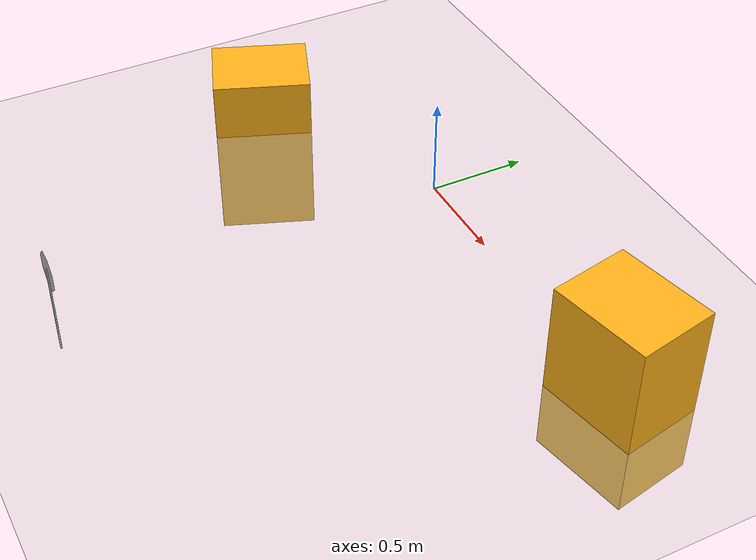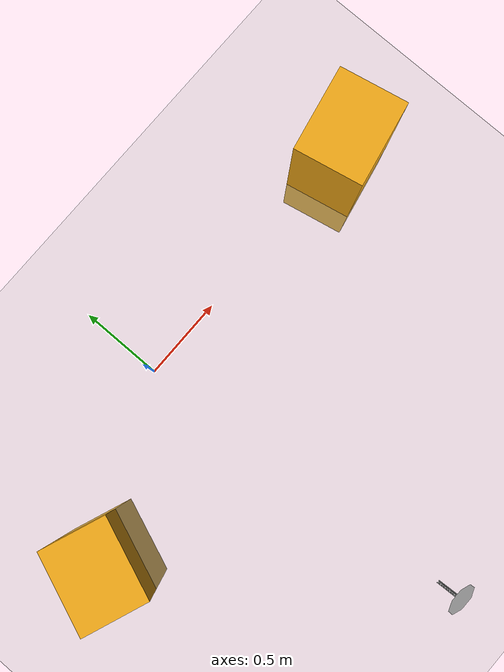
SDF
<sdf version="1.9">
  <world name="default">
    <light name='sun' type='directional'>
      <cast_shadows>1</cast_shadows>
      <pose>0 0 6 0 0 0</pose>
      <diffuse>0.8 0.8 0.8 1</diffuse>
      <specular>0.2 0.2 0.2 1</specular>
      <intensity>2</intensity>
      <attenuation>
        <range>1000</range>
        <constant>0.9</constant>
        <linear>0.01</linear>
        <quadratic>0.001</quadratic>
      </attenuation>
      <direction>-0.2 -0.8 -1</direction>
    </light>

    <include>
      <uri>https://fuel.gazebosim.org/1.0/OpenRobotics/models/Ground Plane</uri>
    </include>

    <physics name='default_physics' type='ignored'>
      <max_step_size>0.001</max_step_size>
      <real_time_factor>1</real_time_factor>
    </physics>

    <model name='Stop Sign'>
      <link name='link'>
        <collision name='stopsign_collision'>
          <geometry>
            <mesh>
              <uri>stop_sign/stopsign.obj</uri>
              <scale>.3 .3 .3</scale>
            </mesh>
          </geometry>
        </collision>
        <visual name='visual'>
          <geometry>
            <mesh>
              <uri>stop_sign/stopsign.obj</uri>
              <scale>.3 .3 .3</scale>
            </mesh>
          </geometry>
        </visual>
        <self_collide>0</self_collide>
        <inertial>
          <inertia>
            <ixx>1</ixx>
            <ixy>0</ixy>
            <ixz>0</ixz>
            <iyy>1</iyy>
            <iyz>0</iyz>
            <izz>1</izz>
          </inertia>
          <mass>1</mass>
        </inertial>
        <kinematic>0</kinematic>
        <gravity>1</gravity>
      </link>
      <pose>.15 -2 -.1 1.570796 0 3.141593</pose>
    </model>

    <model name='cardboard_box1'>
      <pose>1.61279 -0.006215 0.25 0 -0 0</pose>
      <link name='link'>
        <inertial>
          <mass>2</mass>
          <inertia>
            <ixx>0.0416667</ixx>
            <ixy>0</ixy>
            <ixz>0</ixz>
            <iyy>0.0566667</iyy>
            <iyz>0</iyz>
            <izz>0.0683333</izz>
          </inertia>
        </inertial>
        <collision name='collision'>
          <geometry>
            <box>
              <size>0.5 0.4 0.9</size>
            </box>
          </geometry>
          <surface>
            <friction>
              <ode>
                <mu>1</mu>
                <mu2>1</mu2>
              </ode>
              <torsional>
                <ode/>
              </torsional>
            </friction>
            <contact>
              <ode>
                <kp>1e+07</kp>
                <kd>1</kd>
                <min_depth>0.001</min_depth>
                <max_vel>0.1</max_vel>
              </ode>
            </contact>
            <bounce/>
          </surface>
          <max_contacts>10</max_contacts>
        </collision>
        <visual name='visual'>
          <pose>0 0 -0.15 0 -0 .2</pose>
          <geometry>
            <box>
              <size>0.5 0.4 0.9</size>
            </box>
          </geometry>
          <material>
            <ambient>1 0.7 0.1 1</ambient>
            <diffuse>1 0.7 0.1 1</diffuse>
            <specular>0.5 0.5 0.5 0.5</specular>
          </material>
        </visual>
        <self_collide>0</self_collide>
        <kinematic>0</kinematic>
        <gravity>1</gravity>
      </link>
    </model>

    <model name='cardboard_box2'>
      <pose>-1.0 -0.5 0 0 0 1.2</pose>
      <link name='link'>
        <inertial>
          <mass>2</mass>
          <inertia>
            <ixx>0.0416667</ixx>
            <ixy>0</ixy>
            <ixz>0</ixz>
            <iyy>0.0566667</iyy>
            <iyz>0</iyz>
            <izz>0.0683333</izz>
          </inertia>
        </inertial>
        <collision name='collision'>
          <geometry>
            <box>
              <size>0.5 0.4 0.9</size>
            </box>
          </geometry>
          <surface>
            <friction>
              <ode>
                <mu>1</mu>
                <mu2>1</mu2>
              </ode>
              <torsional>
                <ode/>
              </torsional>
            </friction>
            <contact>
              <ode>
                <kp>1e+07</kp>
                <kd>1</kd>
                <min_depth>0.001</min_depth>
                <max_vel>0.1</max_vel>
              </ode>
            </contact>
            <bounce/>
          </surface>
          <max_contacts>10</max_contacts>
        </collision>
        <visual name='visual'>
          <pose>0 0 -0.15 0 -0 0</pose>
          <geometry>
            <box>
              <size>0.5 0.4 0.9</size>
            </box>
          </geometry>
          <material>
            <ambient>1 0.7 0.1 1</ambient>
            <diffuse>1 0.7 0.1 1</diffuse>
            <specular>0.5 0.5 0.5 0.5</specular>
          </material>
        </visual>
        <self_collide>0</self_collide>
        <kinematic>0</kinematic>
        <gravity>1</gravity>
      </link>
    </model>

  </world>
</sdf>
